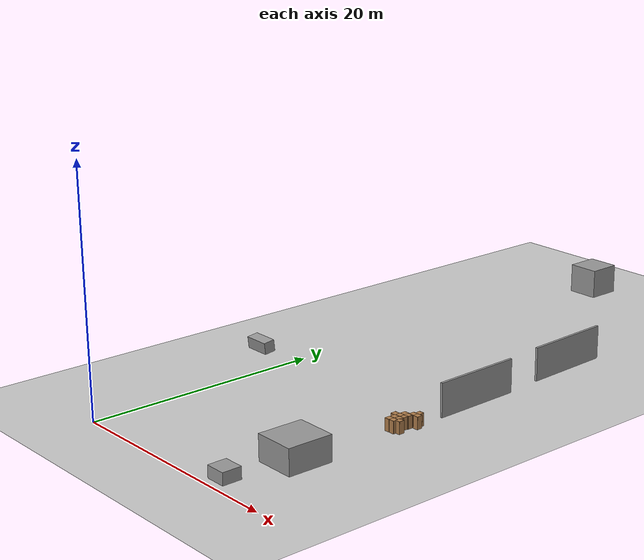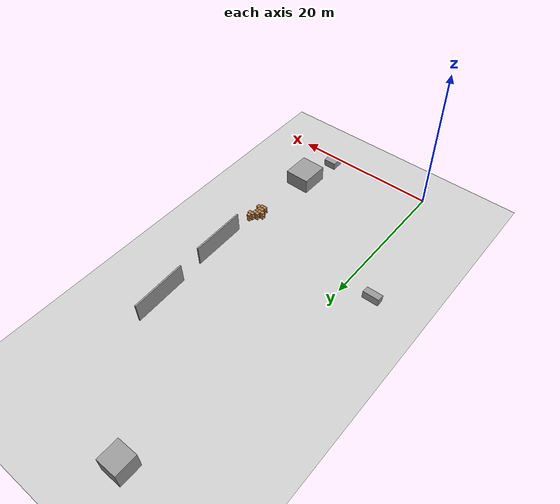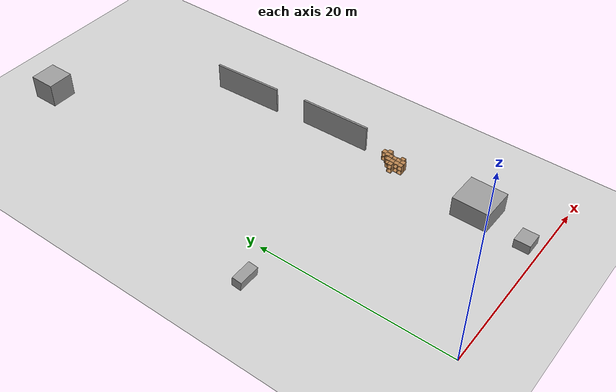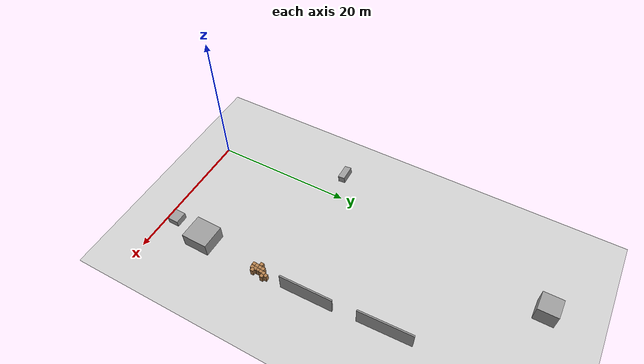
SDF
<sdf version="1.6">
 <world name="default">
  <model name="ground_plane">
   <static>1</static>
   <link name="link">
    <collision name="collision">
     <geometry><plane><normal>0 0 1</normal><size>100 100</size></plane></geometry>
     <surface><friction><ode><mu>100</mu><mu2>50</mu2></ode></friction></surface>
    </collision>
    <visual name="visual">
     <cast_shadows>0</cast_shadows>
     <geometry><plane><normal>0 0 1</normal><size>100 100</size></plane></geometry>
     <material>
      <script><uri>file://media/materials/scripts/gazebo.material</uri><name>Gazebo/Grey</name></script>
     </material>
    </visual>
   </link>
  </model>
  <model name="unit_box">
   <pose>-3.84133 18.5523 0.612648 -1.4529 0.008067 0.007263</pose>
   <link name="link">
    <inertial>
     <mass>1</mass>
     <inertia>
      <ixx>0.166667</ixx>
      <ixy>0</ixy>
      <ixz>0</ixz>
      <iyy>0.166667</iyy>
      <iyz>0</iyz>
      <izz>0.166667</izz>
     </inertia>
    </inertial>
    <collision name="collision"><geometry><box><size>2.24621 1 1</size></box></geometry></collision>
    <visual name="visual">
     <geometry><box><size>2.24621 1 1</size></box></geometry>
     <material>
      <script><name>Gazebo/Grey</name><uri>file://media/materials/scripts/gazebo.material</uri></script>
     </material>
    </visual>
   </link>
  </model>
  <model name="unit_box_0">
   <pose>15.3923 6.85503 1.06531 -0 1e-06 -0.010979</pose>
   <link name="link">
    <inertial>
     <mass>1</mass>
     <inertia>
      <ixx>0.166667</ixx>
      <ixy>0</ixy>
      <ixz>0</ixz>
      <iyy>0.166667</iyy>
      <iyz>0</iyz>
      <izz>0.166667</izz>
     </inertia>
    </inertial>
    <collision name="collision"><geometry><box><size>3.46224 3.79685 2.13062</size></box></geometry></collision>
    <visual name="visual">
     <geometry><box><size>3.46224 3.79685 2.13062</size></box></geometry>
     <material>
      <script><name>Gazebo/Grey</name><uri>file://media/materials/scripts/gazebo.material</uri></script>
     </material>
    </visual>
   </link>
  </model>
  <model name="unit_box_1">
   <pose>14.3808 1.49511 0.5 0 -0 0</pose>
   <link name="link">
    <inertial>
     <mass>1</mass>
     <inertia>
      <ixx>0.166667</ixx>
      <ixy>0</ixy>
      <ixz>0</ixz>
      <iyy>0.166667</iyy>
      <iyz>0</iyz>
      <izz>0.166667</izz>
     </inertia>
    </inertial>
    <collision name="collision"><geometry><box><size>1.73179 1.60115 1</size></box></geometry></collision>
    <visual name="visual">
     <geometry><box><size>1.73179 1.60115 1</size></box></geometry>
     <material>
      <script><name>Gazebo/Grey</name><uri>file://media/materials/scripts/gazebo.material</uri></script>
     </material>
    </visual>
   </link>
  </model>
  <model name="unit_box_2">
   <pose>3.91316 50.9855 1.25941 0 0 -2.2e-05</pose>
   <link name="link">
    <inertial>
     <mass>1</mass>
     <inertia>
      <ixx>0.166667</ixx>
      <ixy>0</ixy>
      <ixz>0</ixz>
      <iyy>0.166667</iyy>
      <iyz>0</iyz>
      <izz>0.166667</izz>
     </inertia>
    </inertial>
    <collision name="collision"><geometry><box><size>2.72719 2.76333 2.51882</size></box></geometry></collision>
    <visual name="visual">
     <geometry><box><size>2.72719 2.76333 2.51882</size></box></geometry>
     <material>
      <script><name>Gazebo/Grey</name><uri>file://media/materials/scripts/gazebo.material</uri></script>
     </material>
    </visual>
   </link>
  </model>
  <model name="cabinet">
   <static>1</static>
   <link name="cabinet_bottom_plate">
    <inertial>
     <pose>0 0 -1 0 -0 0</pose>
     <inertia><ixx>2.05</ixx><ixy>0</ixy><ixz>0</ixz><iyy>2.05</iyy><iyz>0</iyz><izz>2.05</izz></inertia>
     <mass>25</mass>
    </inertial>
    <collision name="cabinet_bottom_plate_geom">
     <pose>0 0 0.01 0 -0 0</pose>
     <geometry><box><size>0.45 0.45 0.02</size></box></geometry>
    </collision>
    <visual name="cabinet_bottom_plate_geom_visual">
     <pose>0 0 0.01 0 -0 0</pose>
     <geometry><box><size>0.45 0.45 0.02</size></box></geometry>
     <material>
      <script><uri>file://media/materials/scripts/gazebo.material</uri><name>Gazebo/Wood</name></script>
     </material>
    </visual>
    <collision name="cabinet_bottom_plate_geom_cabinet_back_plate">
     <pose>0.235 0 0.51 0 -0 0</pose>
     <geometry><box><size>0.02 0.45 1.02</size></box></geometry>
    </collision>
    <visual name="cabinet_bottom_plate_geom_cabinet_back_plate_visual">
     <pose>0.235 0 0.51 0 -0 0</pose>
     <geometry><box><size>0.02 0.45 1.02</size></box></geometry>
     <material>
      <script><uri>file://media/materials/scripts/gazebo.material</uri><name>Gazebo/Wood</name></script>
     </material>
    </visual>
    <collision name="cabinet_bottom_plate_geom_cabinet_left_plate">
     <pose>0 0.235 0.51 0 -0 0</pose>
     <geometry><box><size>0.45 0.02 1.02</size></box></geometry>
    </collision>
    <visual name="cabinet_bottom_plate_geom_cabinet_left_plate_visual">
     <pose>0 0.235 0.51 0 -0 0</pose>
     <geometry><box><size>0.45 0.02 1.02</size></box></geometry>
     <material>
      <script><uri>file://media/materials/scripts/gazebo.material</uri><name>Gazebo/Wood</name></script>
     </material>
    </visual>
    <collision name="cabinet_bottom_plate_geom_cabinet_middle_plate">
     <pose>0 0 0.51 0 -0 0</pose>
     <geometry><box><size>0.45 0.45 0.02</size></box></geometry>
    </collision>
    <visual name="cabinet_bottom_plate_geom_cabinet_middle_plate_visual">
     <pose>0 0 0.51 0 -0 0</pose>
     <geometry><box><size>0.45 0.45 0.02</size></box></geometry>
     <material>
      <script><uri>file://media/materials/scripts/gazebo.material</uri><name>Gazebo/Wood</name></script>
     </material>
    </visual>
    <collision name="cabinet_bottom_plate_geom_cabinet_right_plate">
     <pose>0 -0.235 0.51 0 -0 0</pose>
     <geometry><box><size>0.45 0.02 1.02</size></box></geometry>
    </collision>
    <visual name="cabinet_bottom_plate_geom_cabinet_right_plate_visual">
     <pose>0 -0.235 0.51 0 -0 0</pose>
     <geometry><box><size>0.45 0.02 1.02</size></box></geometry>
     <material>
      <script><uri>file://media/materials/scripts/gazebo.material</uri><name>Gazebo/Wood</name></script>
     </material>
    </visual>
    <collision name="cabinet_bottom_plate_geom_cabinet_top_plate">
     <pose>0 0 1.01 0 -0 0</pose>
     <geometry><box><size>0.45 0.45 0.02</size></box></geometry>
    </collision>
    <visual name="cabinet_bottom_plate_geom_cabinet_top_plate_visual">
     <pose>0 0 1.01 0 -0 0</pose>
     <geometry><box><size>0.45 0.45 0.02</size></box></geometry>
     <material>
      <script><uri>file://media/materials/scripts/gazebo.material</uri><name>Gazebo/Wood</name></script>
     </material>
    </visual>
   </link>
   <pose>15.641 15.3991 0 0 -0 0</pose>
  </model>
  <model name="cabinet_0">
   <static>1</static>
   <link name="cabinet_bottom_plate">
    <inertial>
     <pose>0 0 -1 0 -0 0</pose>
     <inertia><ixx>2.05</ixx><ixy>0</ixy><ixz>0</ixz><iyy>2.05</iyy><iyz>0</iyz><izz>2.05</izz></inertia>
     <mass>25</mass>
    </inertial>
    <collision name="cabinet_bottom_plate_geom">
     <pose>0 0 0.01 0 -0 0</pose>
     <geometry><box><size>0.45 0.45 0.02</size></box></geometry>
    </collision>
    <visual name="cabinet_bottom_plate_geom_visual">
     <pose>0 0 0.01 0 -0 0</pose>
     <geometry><box><size>0.45 0.45 0.02</size></box></geometry>
     <material>
      <script><uri>file://media/materials/scripts/gazebo.material</uri><name>Gazebo/Wood</name></script>
     </material>
    </visual>
    <collision name="cabinet_bottom_plate_geom_cabinet_back_plate">
     <pose>0.235 0 0.51 0 -0 0</pose>
     <geometry><box><size>0.02 0.45 1.02</size></box></geometry>
    </collision>
    <visual name="cabinet_bottom_plate_geom_cabinet_back_plate_visual">
     <pose>0.235 0 0.51 0 -0 0</pose>
     <geometry><box><size>0.02 0.45 1.02</size></box></geometry>
     <material>
      <script><uri>file://media/materials/scripts/gazebo.material</uri><name>Gazebo/Wood</name></script>
     </material>
    </visual>
    <collision name="cabinet_bottom_plate_geom_cabinet_left_plate">
     <pose>0 0.235 0.51 0 -0 0</pose>
     <geometry><box><size>0.45 0.02 1.02</size></box></geometry>
    </collision>
    <visual name="cabinet_bottom_plate_geom_cabinet_left_plate_visual">
     <pose>0 0.235 0.51 0 -0 0</pose>
     <geometry><box><size>0.45 0.02 1.02</size></box></geometry>
     <material>
      <script><uri>file://media/materials/scripts/gazebo.material</uri><name>Gazebo/Wood</name></script>
     </material>
    </visual>
    <collision name="cabinet_bottom_plate_geom_cabinet_middle_plate">
     <pose>0 0 0.51 0 -0 0</pose>
     <geometry><box><size>0.45 0.45 0.02</size></box></geometry>
    </collision>
    <visual name="cabinet_bottom_plate_geom_cabinet_middle_plate_visual">
     <pose>0 0 0.51 0 -0 0</pose>
     <geometry><box><size>0.45 0.45 0.02</size></box></geometry>
     <material>
      <script><uri>file://media/materials/scripts/gazebo.material</uri><name>Gazebo/Wood</name></script>
     </material>
    </visual>
    <collision name="cabinet_bottom_plate_geom_cabinet_right_plate">
     <pose>0 -0.235 0.51 0 -0 0</pose>
     <geometry><box><size>0.45 0.02 1.02</size></box></geometry>
    </collision>
    <visual name="cabinet_bottom_plate_geom_cabinet_right_plate_visual">
     <pose>0 -0.235 0.51 0 -0 0</pose>
     <geometry><box><size>0.45 0.02 1.02</size></box></geometry>
     <material>
      <script><uri>file://media/materials/scripts/gazebo.material</uri><name>Gazebo/Wood</name></script>
     </material>
    </visual>
    <collision name="cabinet_bottom_plate_geom_cabinet_top_plate">
     <pose>0 0 1.01 0 -0 0</pose>
     <geometry><box><size>0.45 0.45 0.02</size></box></geometry>
    </collision>
    <visual name="cabinet_bottom_plate_geom_cabinet_top_plate_visual">
     <pose>0 0 1.01 0 -0 0</pose>
     <geometry><box><size>0.45 0.45 0.02</size></box></geometry>
     <material>
      <script><uri>file://media/materials/scripts/gazebo.material</uri><name>Gazebo/Wood</name></script>
     </material>
    </visual>
   </link>
   <pose>16.1047 15.4134 0 0 -0 0</pose>
  </model>
  <model name="cabinet_1">
   <static>1</static>
   <link name="cabinet_bottom_plate">
    <inertial>
     <pose>0 0 -1 0 -0 0</pose>
     <inertia><ixx>2.05</ixx><ixy>0</ixy><ixz>0</ixz><iyy>2.05</iyy><iyz>0</iyz><izz>2.05</izz></inertia>
     <mass>25</mass>
    </inertial>
    <collision name="cabinet_bottom_plate_geom">
     <pose>0 0 0.01 0 -0 0</pose>
     <geometry><box><size>0.45 0.45 0.02</size></box></geometry>
    </collision>
    <visual name="cabinet_bottom_plate_geom_visual">
     <pose>0 0 0.01 0 -0 0</pose>
     <geometry><box><size>0.45 0.45 0.02</size></box></geometry>
     <material>
      <script><uri>file://media/materials/scripts/gazebo.material</uri><name>Gazebo/Wood</name></script>
     </material>
    </visual>
    <collision name="cabinet_bottom_plate_geom_cabinet_back_plate">
     <pose>0.235 0 0.51 0 -0 0</pose>
     <geometry><box><size>0.02 0.45 1.02</size></box></geometry>
    </collision>
    <visual name="cabinet_bottom_plate_geom_cabinet_back_plate_visual">
     <pose>0.235 0 0.51 0 -0 0</pose>
     <geometry><box><size>0.02 0.45 1.02</size></box></geometry>
     <material>
      <script><uri>file://media/materials/scripts/gazebo.material</uri><name>Gazebo/Wood</name></script>
     </material>
    </visual>
    <collision name="cabinet_bottom_plate_geom_cabinet_left_plate">
     <pose>0 0.235 0.51 0 -0 0</pose>
     <geometry><box><size>0.45 0.02 1.02</size></box></geometry>
    </collision>
    <visual name="cabinet_bottom_plate_geom_cabinet_left_plate_visual">
     <pose>0 0.235 0.51 0 -0 0</pose>
     <geometry><box><size>0.45 0.02 1.02</size></box></geometry>
     <material>
      <script><uri>file://media/materials/scripts/gazebo.material</uri><name>Gazebo/Wood</name></script>
     </material>
    </visual>
    <collision name="cabinet_bottom_plate_geom_cabinet_middle_plate">
     <pose>0 0 0.51 0 -0 0</pose>
     <geometry><box><size>0.45 0.45 0.02</size></box></geometry>
    </collision>
    <visual name="cabinet_bottom_plate_geom_cabinet_middle_plate_visual">
     <pose>0 0 0.51 0 -0 0</pose>
     <geometry><box><size>0.45 0.45 0.02</size></box></geometry>
     <material>
      <script><uri>file://media/materials/scripts/gazebo.material</uri><name>Gazebo/Wood</name></script>
     </material>
    </visual>
    <collision name="cabinet_bottom_plate_geom_cabinet_right_plate">
     <pose>0 -0.235 0.51 0 -0 0</pose>
     <geometry><box><size>0.45 0.02 1.02</size></box></geometry>
    </collision>
    <visual name="cabinet_bottom_plate_geom_cabinet_right_plate_visual">
     <pose>0 -0.235 0.51 0 -0 0</pose>
     <geometry><box><size>0.45 0.02 1.02</size></box></geometry>
     <material>
      <script><uri>file://media/materials/scripts/gazebo.material</uri><name>Gazebo/Wood</name></script>
     </material>
    </visual>
    <collision name="cabinet_bottom_plate_geom_cabinet_top_plate">
     <pose>0 0 1.01 0 -0 0</pose>
     <geometry><box><size>0.45 0.45 0.02</size></box></geometry>
    </collision>
    <visual name="cabinet_bottom_plate_geom_cabinet_top_plate_visual">
     <pose>0 0 1.01 0 -0 0</pose>
     <geometry><box><size>0.45 0.45 0.02</size></box></geometry>
     <material>
      <script><uri>file://media/materials/scripts/gazebo.material</uri><name>Gazebo/Wood</name></script>
     </material>
    </visual>
   </link>
   <pose>15.6879 15.8756 0 0 -0 0</pose>
  </model>
  <model name="cabinet_2">
   <static>1</static>
   <link name="cabinet_bottom_plate">
    <inertial>
     <pose>0 0 -1 0 -0 0</pose>
     <inertia><ixx>2.05</ixx><ixy>0</ixy><ixz>0</ixz><iyy>2.05</iyy><iyz>0</iyz><izz>2.05</izz></inertia>
     <mass>25</mass>
    </inertial>
    <collision name="cabinet_bottom_plate_geom">
     <pose>0 0 0.01 0 -0 0</pose>
     <geometry><box><size>0.45 0.45 0.02</size></box></geometry>
    </collision>
    <visual name="cabinet_bottom_plate_geom_visual">
     <pose>0 0 0.01 0 -0 0</pose>
     <geometry><box><size>0.45 0.45 0.02</size></box></geometry>
     <material>
      <script><uri>file://media/materials/scripts/gazebo.material</uri><name>Gazebo/Wood</name></script>
     </material>
    </visual>
    <collision name="cabinet_bottom_plate_geom_cabinet_back_plate">
     <pose>0.235 0 0.51 0 -0 0</pose>
     <geometry><box><size>0.02 0.45 1.02</size></box></geometry>
    </collision>
    <visual name="cabinet_bottom_plate_geom_cabinet_back_plate_visual">
     <pose>0.235 0 0.51 0 -0 0</pose>
     <geometry><box><size>0.02 0.45 1.02</size></box></geometry>
     <material>
      <script><uri>file://media/materials/scripts/gazebo.material</uri><name>Gazebo/Wood</name></script>
     </material>
    </visual>
    <collision name="cabinet_bottom_plate_geom_cabinet_left_plate">
     <pose>0 0.235 0.51 0 -0 0</pose>
     <geometry><box><size>0.45 0.02 1.02</size></box></geometry>
    </collision>
    <visual name="cabinet_bottom_plate_geom_cabinet_left_plate_visual">
     <pose>0 0.235 0.51 0 -0 0</pose>
     <geometry><box><size>0.45 0.02 1.02</size></box></geometry>
     <material>
      <script><uri>file://media/materials/scripts/gazebo.material</uri><name>Gazebo/Wood</name></script>
     </material>
    </visual>
    <collision name="cabinet_bottom_plate_geom_cabinet_middle_plate">
     <pose>0 0 0.51 0 -0 0</pose>
     <geometry><box><size>0.45 0.45 0.02</size></box></geometry>
    </collision>
    <visual name="cabinet_bottom_plate_geom_cabinet_middle_plate_visual">
     <pose>0 0 0.51 0 -0 0</pose>
     <geometry><box><size>0.45 0.45 0.02</size></box></geometry>
     <material>
      <script><uri>file://media/materials/scripts/gazebo.material</uri><name>Gazebo/Wood</name></script>
     </material>
    </visual>
    <collision name="cabinet_bottom_plate_geom_cabinet_right_plate">
     <pose>0 -0.235 0.51 0 -0 0</pose>
     <geometry><box><size>0.45 0.02 1.02</size></box></geometry>
    </collision>
    <visual name="cabinet_bottom_plate_geom_cabinet_right_plate_visual">
     <pose>0 -0.235 0.51 0 -0 0</pose>
     <geometry><box><size>0.45 0.02 1.02</size></box></geometry>
     <material>
      <script><uri>file://media/materials/scripts/gazebo.material</uri><name>Gazebo/Wood</name></script>
     </material>
    </visual>
    <collision name="cabinet_bottom_plate_geom_cabinet_top_plate">
     <pose>0 0 1.01 0 -0 0</pose>
     <geometry><box><size>0.45 0.45 0.02</size></box></geometry>
    </collision>
    <visual name="cabinet_bottom_plate_geom_cabinet_top_plate_visual">
     <pose>0 0 1.01 0 -0 0</pose>
     <geometry><box><size>0.45 0.45 0.02</size></box></geometry>
     <material>
      <script><uri>file://media/materials/scripts/gazebo.material</uri><name>Gazebo/Wood</name></script>
     </material>
    </visual>
   </link>
   <pose>16.1595 15.9008 0 0 -0 0</pose>
  </model>
  <model name="cabinet_3">
   <static>1</static>
   <link name="cabinet_bottom_plate">
    <inertial>
     <pose>0 0 -1 0 -0 0</pose>
     <inertia><ixx>2.05</ixx><ixy>0</ixy><ixz>0</ixz><iyy>2.05</iyy><iyz>0</iyz><izz>2.05</izz></inertia>
     <mass>25</mass>
    </inertial>
    <collision name="cabinet_bottom_plate_geom">
     <pose>0 0 0.01 0 -0 0</pose>
     <geometry><box><size>0.45 0.45 0.02</size></box></geometry>
    </collision>
    <visual name="cabinet_bottom_plate_geom_visual">
     <pose>0 0 0.01 0 -0 0</pose>
     <geometry><box><size>0.45 0.45 0.02</size></box></geometry>
     <material>
      <script><uri>file://media/materials/scripts/gazebo.material</uri><name>Gazebo/Wood</name></script>
     </material>
    </visual>
    <collision name="cabinet_bottom_plate_geom_cabinet_back_plate">
     <pose>0.235 0 0.51 0 -0 0</pose>
     <geometry><box><size>0.02 0.45 1.02</size></box></geometry>
    </collision>
    <visual name="cabinet_bottom_plate_geom_cabinet_back_plate_visual">
     <pose>0.235 0 0.51 0 -0 0</pose>
     <geometry><box><size>0.02 0.45 1.02</size></box></geometry>
     <material>
      <script><uri>file://media/materials/scripts/gazebo.material</uri><name>Gazebo/Wood</name></script>
     </material>
    </visual>
    <collision name="cabinet_bottom_plate_geom_cabinet_left_plate">
     <pose>0 0.235 0.51 0 -0 0</pose>
     <geometry><box><size>0.45 0.02 1.02</size></box></geometry>
    </collision>
    <visual name="cabinet_bottom_plate_geom_cabinet_left_plate_visual">
     <pose>0 0.235 0.51 0 -0 0</pose>
     <geometry><box><size>0.45 0.02 1.02</size></box></geometry>
     <material>
      <script><uri>file://media/materials/scripts/gazebo.material</uri><name>Gazebo/Wood</name></script>
     </material>
    </visual>
    <collision name="cabinet_bottom_plate_geom_cabinet_middle_plate">
     <pose>0 0 0.51 0 -0 0</pose>
     <geometry><box><size>0.45 0.45 0.02</size></box></geometry>
    </collision>
    <visual name="cabinet_bottom_plate_geom_cabinet_middle_plate_visual">
     <pose>0 0 0.51 0 -0 0</pose>
     <geometry><box><size>0.45 0.45 0.02</size></box></geometry>
     <material>
      <script><uri>file://media/materials/scripts/gazebo.material</uri><name>Gazebo/Wood</name></script>
     </material>
    </visual>
    <collision name="cabinet_bottom_plate_geom_cabinet_right_plate">
     <pose>0 -0.235 0.51 0 -0 0</pose>
     <geometry><box><size>0.45 0.02 1.02</size></box></geometry>
    </collision>
    <visual name="cabinet_bottom_plate_geom_cabinet_right_plate_visual">
     <pose>0 -0.235 0.51 0 -0 0</pose>
     <geometry><box><size>0.45 0.02 1.02</size></box></geometry>
     <material>
      <script><uri>file://media/materials/scripts/gazebo.material</uri><name>Gazebo/Wood</name></script>
     </material>
    </visual>
    <collision name="cabinet_bottom_plate_geom_cabinet_top_plate">
     <pose>0 0 1.01 0 -0 0</pose>
     <geometry><box><size>0.45 0.45 0.02</size></box></geometry>
    </collision>
    <visual name="cabinet_bottom_plate_geom_cabinet_top_plate_visual">
     <pose>0 0 1.01 0 -0 0</pose>
     <geometry><box><size>0.45 0.45 0.02</size></box></geometry>
     <material>
      <script><uri>file://media/materials/scripts/gazebo.material</uri><name>Gazebo/Wood</name></script>
     </material>
    </visual>
   </link>
   <pose>15.7444 16.3642 0 0 -0 0</pose>
  </model>
  <model name="cabinet_4">
   <static>1</static>
   <link name="cabinet_bottom_plate">
    <inertial>
     <pose>0 0 -1 0 -0 0</pose>
     <inertia><ixx>2.05</ixx><ixy>0</ixy><ixz>0</ixz><iyy>2.05</iyy><iyz>0</iyz><izz>2.05</izz></inertia>
     <mass>25</mass>
    </inertial>
    <collision name="cabinet_bottom_plate_geom">
     <pose>0 0 0.01 0 -0 0</pose>
     <geometry><box><size>0.45 0.45 0.02</size></box></geometry>
    </collision>
    <visual name="cabinet_bottom_plate_geom_visual">
     <pose>0 0 0.01 0 -0 0</pose>
     <geometry><box><size>0.45 0.45 0.02</size></box></geometry>
     <material>
      <script><uri>file://media/materials/scripts/gazebo.material</uri><name>Gazebo/Wood</name></script>
     </material>
    </visual>
    <collision name="cabinet_bottom_plate_geom_cabinet_back_plate">
     <pose>0.235 0 0.51 0 -0 0</pose>
     <geometry><box><size>0.02 0.45 1.02</size></box></geometry>
    </collision>
    <visual name="cabinet_bottom_plate_geom_cabinet_back_plate_visual">
     <pose>0.235 0 0.51 0 -0 0</pose>
     <geometry><box><size>0.02 0.45 1.02</size></box></geometry>
     <material>
      <script><uri>file://media/materials/scripts/gazebo.material</uri><name>Gazebo/Wood</name></script>
     </material>
    </visual>
    <collision name="cabinet_bottom_plate_geom_cabinet_left_plate">
     <pose>0 0.235 0.51 0 -0 0</pose>
     <geometry><box><size>0.45 0.02 1.02</size></box></geometry>
    </collision>
    <visual name="cabinet_bottom_plate_geom_cabinet_left_plate_visual">
     <pose>0 0.235 0.51 0 -0 0</pose>
     <geometry><box><size>0.45 0.02 1.02</size></box></geometry>
     <material>
      <script><uri>file://media/materials/scripts/gazebo.material</uri><name>Gazebo/Wood</name></script>
     </material>
    </visual>
    <collision name="cabinet_bottom_plate_geom_cabinet_middle_plate">
     <pose>0 0 0.51 0 -0 0</pose>
     <geometry><box><size>0.45 0.45 0.02</size></box></geometry>
    </collision>
    <visual name="cabinet_bottom_plate_geom_cabinet_middle_plate_visual">
     <pose>0 0 0.51 0 -0 0</pose>
     <geometry><box><size>0.45 0.45 0.02</size></box></geometry>
     <material>
      <script><uri>file://media/materials/scripts/gazebo.material</uri><name>Gazebo/Wood</name></script>
     </material>
    </visual>
    <collision name="cabinet_bottom_plate_geom_cabinet_right_plate">
     <pose>0 -0.235 0.51 0 -0 0</pose>
     <geometry><box><size>0.45 0.02 1.02</size></box></geometry>
    </collision>
    <visual name="cabinet_bottom_plate_geom_cabinet_right_plate_visual">
     <pose>0 -0.235 0.51 0 -0 0</pose>
     <geometry><box><size>0.45 0.02 1.02</size></box></geometry>
     <material>
      <script><uri>file://media/materials/scripts/gazebo.material</uri><name>Gazebo/Wood</name></script>
     </material>
    </visual>
    <collision name="cabinet_bottom_plate_geom_cabinet_top_plate">
     <pose>0 0 1.01 0 -0 0</pose>
     <geometry><box><size>0.45 0.45 0.02</size></box></geometry>
    </collision>
    <visual name="cabinet_bottom_plate_geom_cabinet_top_plate_visual">
     <pose>0 0 1.01 0 -0 0</pose>
     <geometry><box><size>0.45 0.45 0.02</size></box></geometry>
     <material>
      <script><uri>file://media/materials/scripts/gazebo.material</uri><name>Gazebo/Wood</name></script>
     </material>
    </visual>
   </link>
   <pose>16.128 16.3867 0 0 -0 0</pose>
  </model>
  <model name="cabinet_5">
   <static>1</static>
   <link name="cabinet_bottom_plate">
    <inertial>
     <pose>0 0 -1 0 -0 0</pose>
     <inertia><ixx>2.05</ixx><ixy>0</ixy><ixz>0</ixz><iyy>2.05</iyy><iyz>0</iyz><izz>2.05</izz></inertia>
     <mass>25</mass>
    </inertial>
    <collision name="cabinet_bottom_plate_geom">
     <pose>0 0 0.01 0 -0 0</pose>
     <geometry><box><size>0.45 0.45 0.02</size></box></geometry>
    </collision>
    <visual name="cabinet_bottom_plate_geom_visual">
     <pose>0 0 0.01 0 -0 0</pose>
     <geometry><box><size>0.45 0.45 0.02</size></box></geometry>
     <material>
      <script><uri>file://media/materials/scripts/gazebo.material</uri><name>Gazebo/Wood</name></script>
     </material>
    </visual>
    <collision name="cabinet_bottom_plate_geom_cabinet_back_plate">
     <pose>0.235 0 0.51 0 -0 0</pose>
     <geometry><box><size>0.02 0.45 1.02</size></box></geometry>
    </collision>
    <visual name="cabinet_bottom_plate_geom_cabinet_back_plate_visual">
     <pose>0.235 0 0.51 0 -0 0</pose>
     <geometry><box><size>0.02 0.45 1.02</size></box></geometry>
     <material>
      <script><uri>file://media/materials/scripts/gazebo.material</uri><name>Gazebo/Wood</name></script>
     </material>
    </visual>
    <collision name="cabinet_bottom_plate_geom_cabinet_left_plate">
     <pose>0 0.235 0.51 0 -0 0</pose>
     <geometry><box><size>0.45 0.02 1.02</size></box></geometry>
    </collision>
    <visual name="cabinet_bottom_plate_geom_cabinet_left_plate_visual">
     <pose>0 0.235 0.51 0 -0 0</pose>
     <geometry><box><size>0.45 0.02 1.02</size></box></geometry>
     <material>
      <script><uri>file://media/materials/scripts/gazebo.material</uri><name>Gazebo/Wood</name></script>
     </material>
    </visual>
    <collision name="cabinet_bottom_plate_geom_cabinet_middle_plate">
     <pose>0 0 0.51 0 -0 0</pose>
     <geometry><box><size>0.45 0.45 0.02</size></box></geometry>
    </collision>
    <visual name="cabinet_bottom_plate_geom_cabinet_middle_plate_visual">
     <pose>0 0 0.51 0 -0 0</pose>
     <geometry><box><size>0.45 0.45 0.02</size></box></geometry>
     <material>
      <script><uri>file://media/materials/scripts/gazebo.material</uri><name>Gazebo/Wood</name></script>
     </material>
    </visual>
    <collision name="cabinet_bottom_plate_geom_cabinet_right_plate">
     <pose>0 -0.235 0.51 0 -0 0</pose>
     <geometry><box><size>0.45 0.02 1.02</size></box></geometry>
    </collision>
    <visual name="cabinet_bottom_plate_geom_cabinet_right_plate_visual">
     <pose>0 -0.235 0.51 0 -0 0</pose>
     <geometry><box><size>0.45 0.02 1.02</size></box></geometry>
     <material>
      <script><uri>file://media/materials/scripts/gazebo.material</uri><name>Gazebo/Wood</name></script>
     </material>
    </visual>
    <collision name="cabinet_bottom_plate_geom_cabinet_top_plate">
     <pose>0 0 1.01 0 -0 0</pose>
     <geometry><box><size>0.45 0.45 0.02</size></box></geometry>
    </collision>
    <visual name="cabinet_bottom_plate_geom_cabinet_top_plate_visual">
     <pose>0 0 1.01 0 -0 0</pose>
     <geometry><box><size>0.45 0.45 0.02</size></box></geometry>
     <material>
      <script><uri>file://media/materials/scripts/gazebo.material</uri><name>Gazebo/Wood</name></script>
     </material>
    </visual>
   </link>
   <pose>16.4766 15.657 0 0 -0 0</pose>
  </model>
  <model name="cabinet_6">
   <static>1</static>
   <link name="cabinet_bottom_plate">
    <inertial>
     <pose>0 0 -1 0 -0 0</pose>
     <inertia><ixx>2.05</ixx><ixy>0</ixy><ixz>0</ixz><iyy>2.05</iyy><iyz>0</iyz><izz>2.05</izz></inertia>
     <mass>25</mass>
    </inertial>
    <collision name="cabinet_bottom_plate_geom">
     <pose>0 0 0.01 0 -0 0</pose>
     <geometry><box><size>0.45 0.45 0.02</size></box></geometry>
    </collision>
    <visual name="cabinet_bottom_plate_geom_visual">
     <pose>0 0 0.01 0 -0 0</pose>
     <geometry><box><size>0.45 0.45 0.02</size></box></geometry>
     <material>
      <script><uri>file://media/materials/scripts/gazebo.material</uri><name>Gazebo/Wood</name></script>
     </material>
    </visual>
    <collision name="cabinet_bottom_plate_geom_cabinet_back_plate">
     <pose>0.235 0 0.51 0 -0 0</pose>
     <geometry><box><size>0.02 0.45 1.02</size></box></geometry>
    </collision>
    <visual name="cabinet_bottom_plate_geom_cabinet_back_plate_visual">
     <pose>0.235 0 0.51 0 -0 0</pose>
     <geometry><box><size>0.02 0.45 1.02</size></box></geometry>
     <material>
      <script><uri>file://media/materials/scripts/gazebo.material</uri><name>Gazebo/Wood</name></script>
     </material>
    </visual>
    <collision name="cabinet_bottom_plate_geom_cabinet_left_plate">
     <pose>0 0.235 0.51 0 -0 0</pose>
     <geometry><box><size>0.45 0.02 1.02</size></box></geometry>
    </collision>
    <visual name="cabinet_bottom_plate_geom_cabinet_left_plate_visual">
     <pose>0 0.235 0.51 0 -0 0</pose>
     <geometry><box><size>0.45 0.02 1.02</size></box></geometry>
     <material>
      <script><uri>file://media/materials/scripts/gazebo.material</uri><name>Gazebo/Wood</name></script>
     </material>
    </visual>
    <collision name="cabinet_bottom_plate_geom_cabinet_middle_plate">
     <pose>0 0 0.51 0 -0 0</pose>
     <geometry><box><size>0.45 0.45 0.02</size></box></geometry>
    </collision>
    <visual name="cabinet_bottom_plate_geom_cabinet_middle_plate_visual">
     <pose>0 0 0.51 0 -0 0</pose>
     <geometry><box><size>0.45 0.45 0.02</size></box></geometry>
     <material>
      <script><uri>file://media/materials/scripts/gazebo.material</uri><name>Gazebo/Wood</name></script>
     </material>
    </visual>
    <collision name="cabinet_bottom_plate_geom_cabinet_right_plate">
     <pose>0 -0.235 0.51 0 -0 0</pose>
     <geometry><box><size>0.45 0.02 1.02</size></box></geometry>
    </collision>
    <visual name="cabinet_bottom_plate_geom_cabinet_right_plate_visual">
     <pose>0 -0.235 0.51 0 -0 0</pose>
     <geometry><box><size>0.45 0.02 1.02</size></box></geometry>
     <material>
      <script><uri>file://media/materials/scripts/gazebo.material</uri><name>Gazebo/Wood</name></script>
     </material>
    </visual>
    <collision name="cabinet_bottom_plate_geom_cabinet_top_plate">
     <pose>0 0 1.01 0 -0 0</pose>
     <geometry><box><size>0.45 0.45 0.02</size></box></geometry>
    </collision>
    <visual name="cabinet_bottom_plate_geom_cabinet_top_plate_visual">
     <pose>0 0 1.01 0 -0 0</pose>
     <geometry><box><size>0.45 0.45 0.02</size></box></geometry>
     <material>
      <script><uri>file://media/materials/scripts/gazebo.material</uri><name>Gazebo/Wood</name></script>
     </material>
    </visual>
   </link>
   <pose>15.2742 16.3055 0 0 -0 0</pose>
  </model>
  <model name="cabinet_7">
   <static>1</static>
   <link name="cabinet_bottom_plate">
    <inertial>
     <pose>0 0 -1 0 -0 0</pose>
     <inertia><ixx>2.05</ixx><ixy>0</ixy><ixz>0</ixz><iyy>2.05</iyy><iyz>0</iyz><izz>2.05</izz></inertia>
     <mass>25</mass>
    </inertial>
    <collision name="cabinet_bottom_plate_geom">
     <pose>0 0 0.01 0 -0 0</pose>
     <geometry><box><size>0.45 0.45 0.02</size></box></geometry>
    </collision>
    <visual name="cabinet_bottom_plate_geom_visual">
     <pose>0 0 0.01 0 -0 0</pose>
     <geometry><box><size>0.45 0.45 0.02</size></box></geometry>
     <material>
      <script><uri>file://media/materials/scripts/gazebo.material</uri><name>Gazebo/Wood</name></script>
     </material>
    </visual>
    <collision name="cabinet_bottom_plate_geom_cabinet_back_plate">
     <pose>0.235 0 0.51 0 -0 0</pose>
     <geometry><box><size>0.02 0.45 1.02</size></box></geometry>
    </collision>
    <visual name="cabinet_bottom_plate_geom_cabinet_back_plate_visual">
     <pose>0.235 0 0.51 0 -0 0</pose>
     <geometry><box><size>0.02 0.45 1.02</size></box></geometry>
     <material>
      <script><uri>file://media/materials/scripts/gazebo.material</uri><name>Gazebo/Wood</name></script>
     </material>
    </visual>
    <collision name="cabinet_bottom_plate_geom_cabinet_left_plate">
     <pose>0 0.235 0.51 0 -0 0</pose>
     <geometry><box><size>0.45 0.02 1.02</size></box></geometry>
    </collision>
    <visual name="cabinet_bottom_plate_geom_cabinet_left_plate_visual">
     <pose>0 0.235 0.51 0 -0 0</pose>
     <geometry><box><size>0.45 0.02 1.02</size></box></geometry>
     <material>
      <script><uri>file://media/materials/scripts/gazebo.material</uri><name>Gazebo/Wood</name></script>
     </material>
    </visual>
    <collision name="cabinet_bottom_plate_geom_cabinet_middle_plate">
     <pose>0 0 0.51 0 -0 0</pose>
     <geometry><box><size>0.45 0.45 0.02</size></box></geometry>
    </collision>
    <visual name="cabinet_bottom_plate_geom_cabinet_middle_plate_visual">
     <pose>0 0 0.51 0 -0 0</pose>
     <geometry><box><size>0.45 0.45 0.02</size></box></geometry>
     <material>
      <script><uri>file://media/materials/scripts/gazebo.material</uri><name>Gazebo/Wood</name></script>
     </material>
    </visual>
    <collision name="cabinet_bottom_plate_geom_cabinet_right_plate">
     <pose>0 -0.235 0.51 0 -0 0</pose>
     <geometry><box><size>0.45 0.02 1.02</size></box></geometry>
    </collision>
    <visual name="cabinet_bottom_plate_geom_cabinet_right_plate_visual">
     <pose>0 -0.235 0.51 0 -0 0</pose>
     <geometry><box><size>0.45 0.02 1.02</size></box></geometry>
     <material>
      <script><uri>file://media/materials/scripts/gazebo.material</uri><name>Gazebo/Wood</name></script>
     </material>
    </visual>
    <collision name="cabinet_bottom_plate_geom_cabinet_top_plate">
     <pose>0 0 1.01 0 -0 0</pose>
     <geometry><box><size>0.45 0.45 0.02</size></box></geometry>
    </collision>
    <visual name="cabinet_bottom_plate_geom_cabinet_top_plate_visual">
     <pose>0 0 1.01 0 -0 0</pose>
     <geometry><box><size>0.45 0.45 0.02</size></box></geometry>
     <material>
      <script><uri>file://media/materials/scripts/gazebo.material</uri><name>Gazebo/Wood</name></script>
     </material>
    </visual>
   </link>
   <pose>16.1803 16.7783 0 0 -0 0</pose>
  </model>
  <model name="cabinet_8">
   <static>1</static>
   <link name="cabinet_bottom_plate">
    <inertial>
     <pose>0 0 -1 0 -0 0</pose>
     <inertia><ixx>2.05</ixx><ixy>0</ixy><ixz>0</ixz><iyy>2.05</iyy><iyz>0</iyz><izz>2.05</izz></inertia>
     <mass>25</mass>
    </inertial>
    <collision name="cabinet_bottom_plate_geom">
     <pose>0 0 0.01 0 -0 0</pose>
     <geometry><box><size>0.45 0.45 0.02</size></box></geometry>
    </collision>
    <visual name="cabinet_bottom_plate_geom_visual">
     <pose>0 0 0.01 0 -0 0</pose>
     <geometry><box><size>0.45 0.45 0.02</size></box></geometry>
     <material>
      <script><uri>file://media/materials/scripts/gazebo.material</uri><name>Gazebo/Wood</name></script>
     </material>
    </visual>
    <collision name="cabinet_bottom_plate_geom_cabinet_back_plate">
     <pose>0.235 0 0.51 0 -0 0</pose>
     <geometry><box><size>0.02 0.45 1.02</size></box></geometry>
    </collision>
    <visual name="cabinet_bottom_plate_geom_cabinet_back_plate_visual">
     <pose>0.235 0 0.51 0 -0 0</pose>
     <geometry><box><size>0.02 0.45 1.02</size></box></geometry>
     <material>
      <script><uri>file://media/materials/scripts/gazebo.material</uri><name>Gazebo/Wood</name></script>
     </material>
    </visual>
    <collision name="cabinet_bottom_plate_geom_cabinet_left_plate">
     <pose>0 0.235 0.51 0 -0 0</pose>
     <geometry><box><size>0.45 0.02 1.02</size></box></geometry>
    </collision>
    <visual name="cabinet_bottom_plate_geom_cabinet_left_plate_visual">
     <pose>0 0.235 0.51 0 -0 0</pose>
     <geometry><box><size>0.45 0.02 1.02</size></box></geometry>
     <material>
      <script><uri>file://media/materials/scripts/gazebo.material</uri><name>Gazebo/Wood</name></script>
     </material>
    </visual>
    <collision name="cabinet_bottom_plate_geom_cabinet_middle_plate">
     <pose>0 0 0.51 0 -0 0</pose>
     <geometry><box><size>0.45 0.45 0.02</size></box></geometry>
    </collision>
    <visual name="cabinet_bottom_plate_geom_cabinet_middle_plate_visual">
     <pose>0 0 0.51 0 -0 0</pose>
     <geometry><box><size>0.45 0.45 0.02</size></box></geometry>
     <material>
      <script><uri>file://media/materials/scripts/gazebo.material</uri><name>Gazebo/Wood</name></script>
     </material>
    </visual>
    <collision name="cabinet_bottom_plate_geom_cabinet_right_plate">
     <pose>0 -0.235 0.51 0 -0 0</pose>
     <geometry><box><size>0.45 0.02 1.02</size></box></geometry>
    </collision>
    <visual name="cabinet_bottom_plate_geom_cabinet_right_plate_visual">
     <pose>0 -0.235 0.51 0 -0 0</pose>
     <geometry><box><size>0.45 0.02 1.02</size></box></geometry>
     <material>
      <script><uri>file://media/materials/scripts/gazebo.material</uri><name>Gazebo/Wood</name></script>
     </material>
    </visual>
    <collision name="cabinet_bottom_plate_geom_cabinet_top_plate">
     <pose>0 0 1.01 0 -0 0</pose>
     <geometry><box><size>0.45 0.45 0.02</size></box></geometry>
    </collision>
    <visual name="cabinet_bottom_plate_geom_cabinet_top_plate_visual">
     <pose>0 0 1.01 0 -0 0</pose>
     <geometry><box><size>0.45 0.45 0.02</size></box></geometry>
     <material>
      <script><uri>file://media/materials/scripts/gazebo.material</uri><name>Gazebo/Wood</name></script>
     </material>
    </visual>
   </link>
   <pose>15.7515 16.8265 0 0 -0 0</pose>
  </model>
  <model name="cabinet_9">
   <static>1</static>
   <link name="cabinet_bottom_plate">
    <inertial>
     <pose>0 0 -1 0 -0 0</pose>
     <inertia><ixx>2.05</ixx><ixy>0</ixy><ixz>0</ixz><iyy>2.05</iyy><iyz>0</iyz><izz>2.05</izz></inertia>
     <mass>25</mass>
    </inertial>
    <collision name="cabinet_bottom_plate_geom">
     <pose>0 0 0.01 0 -0 0</pose>
     <geometry><box><size>0.45 0.45 0.02</size></box></geometry>
    </collision>
    <visual name="cabinet_bottom_plate_geom_visual">
     <pose>0 0 0.01 0 -0 0</pose>
     <geometry><box><size>0.45 0.45 0.02</size></box></geometry>
     <material>
      <script><uri>file://media/materials/scripts/gazebo.material</uri><name>Gazebo/Wood</name></script>
     </material>
    </visual>
    <collision name="cabinet_bottom_plate_geom_cabinet_back_plate">
     <pose>0.235 0 0.51 0 -0 0</pose>
     <geometry><box><size>0.02 0.45 1.02</size></box></geometry>
    </collision>
    <visual name="cabinet_bottom_plate_geom_cabinet_back_plate_visual">
     <pose>0.235 0 0.51 0 -0 0</pose>
     <geometry><box><size>0.02 0.45 1.02</size></box></geometry>
     <material>
      <script><uri>file://media/materials/scripts/gazebo.material</uri><name>Gazebo/Wood</name></script>
     </material>
    </visual>
    <collision name="cabinet_bottom_plate_geom_cabinet_left_plate">
     <pose>0 0.235 0.51 0 -0 0</pose>
     <geometry><box><size>0.45 0.02 1.02</size></box></geometry>
    </collision>
    <visual name="cabinet_bottom_plate_geom_cabinet_left_plate_visual">
     <pose>0 0.235 0.51 0 -0 0</pose>
     <geometry><box><size>0.45 0.02 1.02</size></box></geometry>
     <material>
      <script><uri>file://media/materials/scripts/gazebo.material</uri><name>Gazebo/Wood</name></script>
     </material>
    </visual>
    <collision name="cabinet_bottom_plate_geom_cabinet_middle_plate">
     <pose>0 0 0.51 0 -0 0</pose>
     <geometry><box><size>0.45 0.45 0.02</size></box></geometry>
    </collision>
    <visual name="cabinet_bottom_plate_geom_cabinet_middle_plate_visual">
     <pose>0 0 0.51 0 -0 0</pose>
     <geometry><box><size>0.45 0.45 0.02</size></box></geometry>
     <material>
      <script><uri>file://media/materials/scripts/gazebo.material</uri><name>Gazebo/Wood</name></script>
     </material>
    </visual>
    <collision name="cabinet_bottom_plate_geom_cabinet_right_plate">
     <pose>0 -0.235 0.51 0 -0 0</pose>
     <geometry><box><size>0.45 0.02 1.02</size></box></geometry>
    </collision>
    <visual name="cabinet_bottom_plate_geom_cabinet_right_plate_visual">
     <pose>0 -0.235 0.51 0 -0 0</pose>
     <geometry><box><size>0.45 0.02 1.02</size></box></geometry>
     <material>
      <script><uri>file://media/materials/scripts/gazebo.material</uri><name>Gazebo/Wood</name></script>
     </material>
    </visual>
    <collision name="cabinet_bottom_plate_geom_cabinet_top_plate">
     <pose>0 0 1.01 0 -0 0</pose>
     <geometry><box><size>0.45 0.45 0.02</size></box></geometry>
    </collision>
    <visual name="cabinet_bottom_plate_geom_cabinet_top_plate_visual">
     <pose>0 0 1.01 0 -0 0</pose>
     <geometry><box><size>0.45 0.45 0.02</size></box></geometry>
     <material>
      <script><uri>file://media/materials/scripts/gazebo.material</uri><name>Gazebo/Wood</name></script>
     </material>
    </visual>
   </link>
   <pose>16.2555 17.2235 0 0 -0 0</pose>
  </model>
  <model name="cabinet_10">
   <static>1</static>
   <link name="cabinet_bottom_plate">
    <inertial>
     <pose>0 0 -1 0 -0 0</pose>
     <inertia><ixx>2.05</ixx><ixy>0</ixy><ixz>0</ixz><iyy>2.05</iyy><iyz>0</iyz><izz>2.05</izz></inertia>
     <mass>25</mass>
    </inertial>
    <collision name="cabinet_bottom_plate_geom">
     <pose>0 0 0.01 0 -0 0</pose>
     <geometry><box><size>0.45 0.45 0.02</size></box></geometry>
    </collision>
    <visual name="cabinet_bottom_plate_geom_visual">
     <pose>0 0 0.01 0 -0 0</pose>
     <geometry><box><size>0.45 0.45 0.02</size></box></geometry>
     <material>
      <script><uri>file://media/materials/scripts/gazebo.material</uri><name>Gazebo/Wood</name></script>
     </material>
    </visual>
    <collision name="cabinet_bottom_plate_geom_cabinet_back_plate">
     <pose>0.235 0 0.51 0 -0 0</pose>
     <geometry><box><size>0.02 0.45 1.02</size></box></geometry>
    </collision>
    <visual name="cabinet_bottom_plate_geom_cabinet_back_plate_visual">
     <pose>0.235 0 0.51 0 -0 0</pose>
     <geometry><box><size>0.02 0.45 1.02</size></box></geometry>
     <material>
      <script><uri>file://media/materials/scripts/gazebo.material</uri><name>Gazebo/Wood</name></script>
     </material>
    </visual>
    <collision name="cabinet_bottom_plate_geom_cabinet_left_plate">
     <pose>0 0.235 0.51 0 -0 0</pose>
     <geometry><box><size>0.45 0.02 1.02</size></box></geometry>
    </collision>
    <visual name="cabinet_bottom_plate_geom_cabinet_left_plate_visual">
     <pose>0 0.235 0.51 0 -0 0</pose>
     <geometry><box><size>0.45 0.02 1.02</size></box></geometry>
     <material>
      <script><uri>file://media/materials/scripts/gazebo.material</uri><name>Gazebo/Wood</name></script>
     </material>
    </visual>
    <collision name="cabinet_bottom_plate_geom_cabinet_middle_plate">
     <pose>0 0 0.51 0 -0 0</pose>
     <geometry><box><size>0.45 0.45 0.02</size></box></geometry>
    </collision>
    <visual name="cabinet_bottom_plate_geom_cabinet_middle_plate_visual">
     <pose>0 0 0.51 0 -0 0</pose>
     <geometry><box><size>0.45 0.45 0.02</size></box></geometry>
     <material>
      <script><uri>file://media/materials/scripts/gazebo.material</uri><name>Gazebo/Wood</name></script>
     </material>
    </visual>
    <collision name="cabinet_bottom_plate_geom_cabinet_right_plate">
     <pose>0 -0.235 0.51 0 -0 0</pose>
     <geometry><box><size>0.45 0.02 1.02</size></box></geometry>
    </collision>
    <visual name="cabinet_bottom_plate_geom_cabinet_right_plate_visual">
     <pose>0 -0.235 0.51 0 -0 0</pose>
     <geometry><box><size>0.45 0.02 1.02</size></box></geometry>
     <material>
      <script><uri>file://media/materials/scripts/gazebo.material</uri><name>Gazebo/Wood</name></script>
     </material>
    </visual>
    <collision name="cabinet_bottom_plate_geom_cabinet_top_plate">
     <pose>0 0 1.01 0 -0 0</pose>
     <geometry><box><size>0.45 0.45 0.02</size></box></geometry>
    </collision>
    <visual name="cabinet_bottom_plate_geom_cabinet_top_plate_visual">
     <pose>0 0 1.01 0 -0 0</pose>
     <geometry><box><size>0.45 0.45 0.02</size></box></geometry>
     <material>
      <script><uri>file://media/materials/scripts/gazebo.material</uri><name>Gazebo/Wood</name></script>
     </material>
    </visual>
   </link>
   <pose>16.6949 17.2343 0 0 -0 0</pose>
  </model>
  <model name="cabinet_11">
   <static>1</static>
   <link name="cabinet_bottom_plate">
    <inertial>
     <pose>0 0 -1 0 -0 0</pose>
     <inertia><ixx>2.05</ixx><ixy>0</ixy><ixz>0</ixz><iyy>2.05</iyy><iyz>0</iyz><izz>2.05</izz></inertia>
     <mass>25</mass>
    </inertial>
    <collision name="cabinet_bottom_plate_geom">
     <pose>0 0 0.01 0 -0 0</pose>
     <geometry><box><size>0.45 0.45 0.02</size></box></geometry>
    </collision>
    <visual name="cabinet_bottom_plate_geom_visual">
     <pose>0 0 0.01 0 -0 0</pose>
     <geometry><box><size>0.45 0.45 0.02</size></box></geometry>
     <material>
      <script><uri>file://media/materials/scripts/gazebo.material</uri><name>Gazebo/Wood</name></script>
     </material>
    </visual>
    <collision name="cabinet_bottom_plate_geom_cabinet_back_plate">
     <pose>0.235 0 0.51 0 -0 0</pose>
     <geometry><box><size>0.02 0.45 1.02</size></box></geometry>
    </collision>
    <visual name="cabinet_bottom_plate_geom_cabinet_back_plate_visual">
     <pose>0.235 0 0.51 0 -0 0</pose>
     <geometry><box><size>0.02 0.45 1.02</size></box></geometry>
     <material>
      <script><uri>file://media/materials/scripts/gazebo.material</uri><name>Gazebo/Wood</name></script>
     </material>
    </visual>
    <collision name="cabinet_bottom_plate_geom_cabinet_left_plate">
     <pose>0 0.235 0.51 0 -0 0</pose>
     <geometry><box><size>0.45 0.02 1.02</size></box></geometry>
    </collision>
    <visual name="cabinet_bottom_plate_geom_cabinet_left_plate_visual">
     <pose>0 0.235 0.51 0 -0 0</pose>
     <geometry><box><size>0.45 0.02 1.02</size></box></geometry>
     <material>
      <script><uri>file://media/materials/scripts/gazebo.material</uri><name>Gazebo/Wood</name></script>
     </material>
    </visual>
    <collision name="cabinet_bottom_plate_geom_cabinet_middle_plate">
     <pose>0 0 0.51 0 -0 0</pose>
     <geometry><box><size>0.45 0.45 0.02</size></box></geometry>
    </collision>
    <visual name="cabinet_bottom_plate_geom_cabinet_middle_plate_visual">
     <pose>0 0 0.51 0 -0 0</pose>
     <geometry><box><size>0.45 0.45 0.02</size></box></geometry>
     <material>
      <script><uri>file://media/materials/scripts/gazebo.material</uri><name>Gazebo/Wood</name></script>
     </material>
    </visual>
    <collision name="cabinet_bottom_plate_geom_cabinet_right_plate">
     <pose>0 -0.235 0.51 0 -0 0</pose>
     <geometry><box><size>0.45 0.02 1.02</size></box></geometry>
    </collision>
    <visual name="cabinet_bottom_plate_geom_cabinet_right_plate_visual">
     <pose>0 -0.235 0.51 0 -0 0</pose>
     <geometry><box><size>0.45 0.02 1.02</size></box></geometry>
     <material>
      <script><uri>file://media/materials/scripts/gazebo.material</uri><name>Gazebo/Wood</name></script>
     </material>
    </visual>
    <collision name="cabinet_bottom_plate_geom_cabinet_top_plate">
     <pose>0 0 1.01 0 -0 0</pose>
     <geometry><box><size>0.45 0.45 0.02</size></box></geometry>
    </collision>
    <visual name="cabinet_bottom_plate_geom_cabinet_top_plate_visual">
     <pose>0 0 1.01 0 -0 0</pose>
     <geometry><box><size>0.45 0.45 0.02</size></box></geometry>
     <material>
      <script><uri>file://media/materials/scripts/gazebo.material</uri><name>Gazebo/Wood</name></script>
     </material>
    </visual>
   </link>
   <pose>16.4411 17.662 0 0 -0 0</pose>
  </model>
  <model name="grey_wall_5">
   <static>1</static>
   <link name="link">
    <pose>0 0 1.4 0 -0 0</pose>
    <collision name="collision"><geometry><box><size>7.5 0.2 2.8</size></box></geometry></collision>
    <visual name="visual">
     <cast_shadows>0</cast_shadows>
     <geometry><box><size>7.5 0.2 2.8</size></box></geometry>
     <material>
      <script>
       <uri>model://grey_wall/materials/scripts</uri>
       <uri>model://grey_wall/materials/textures</uri>
       <name>vrc/grey_wall</name>
      </script>
     </material>
    </visual>
   </link>
   <pose>16.3532 23.6288 0 0 0 -1.55267</pose>
  </model>
  <model name="grey_wall_6">
   <static>1</static>
   <link name="link">
    <pose>0 0 1.4 0 -0 0</pose>
    <collision name="collision"><geometry><box><size>7.5 0.2 2.8</size></box></geometry></collision>
    <visual name="visual">
     <cast_shadows>0</cast_shadows>
     <geometry><box><size>7.5 0.2 2.8</size></box></geometry>
     <material>
      <script>
       <uri>model://grey_wall/materials/scripts</uri>
       <uri>model://grey_wall/materials/textures</uri>
       <name>vrc/grey_wall</name>
      </script>
     </material>
    </visual>
   </link>
   <pose>15.8239 34.3312 0 0 -0 1.60942</pose>
  </model>
 </world>
</sdf>
